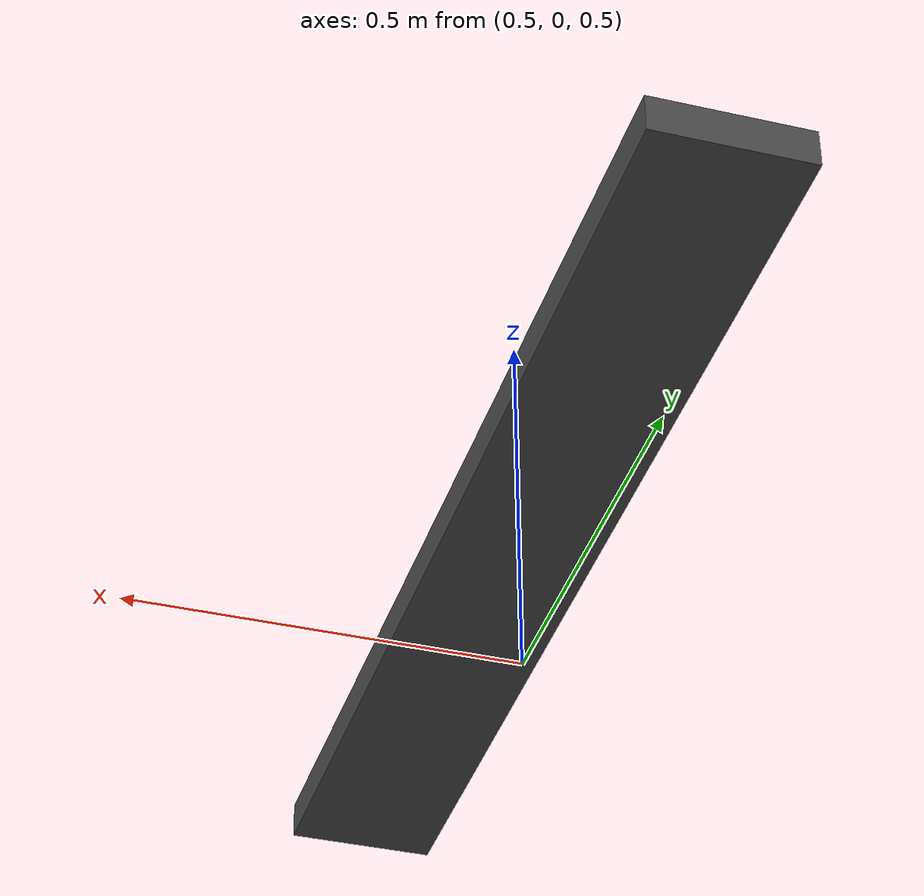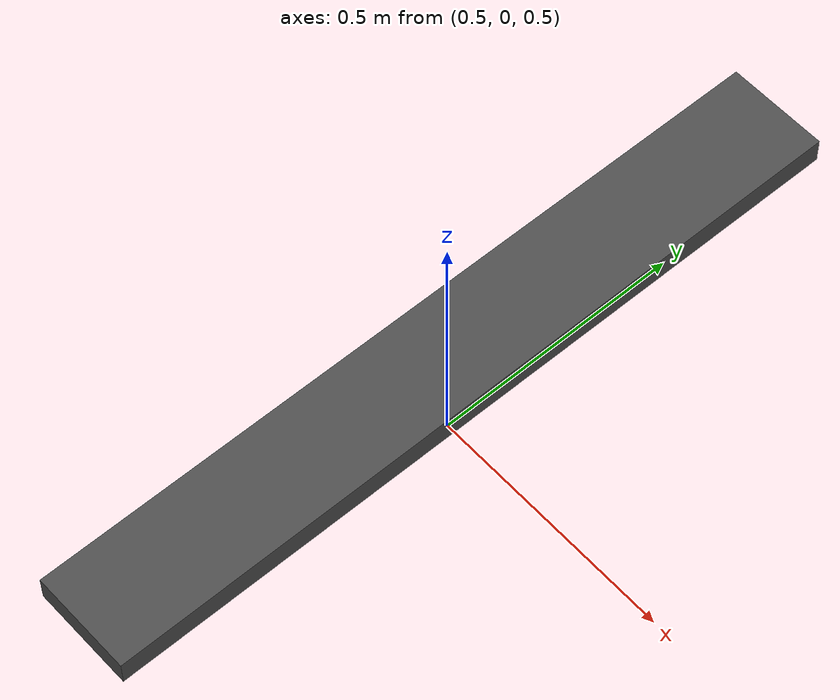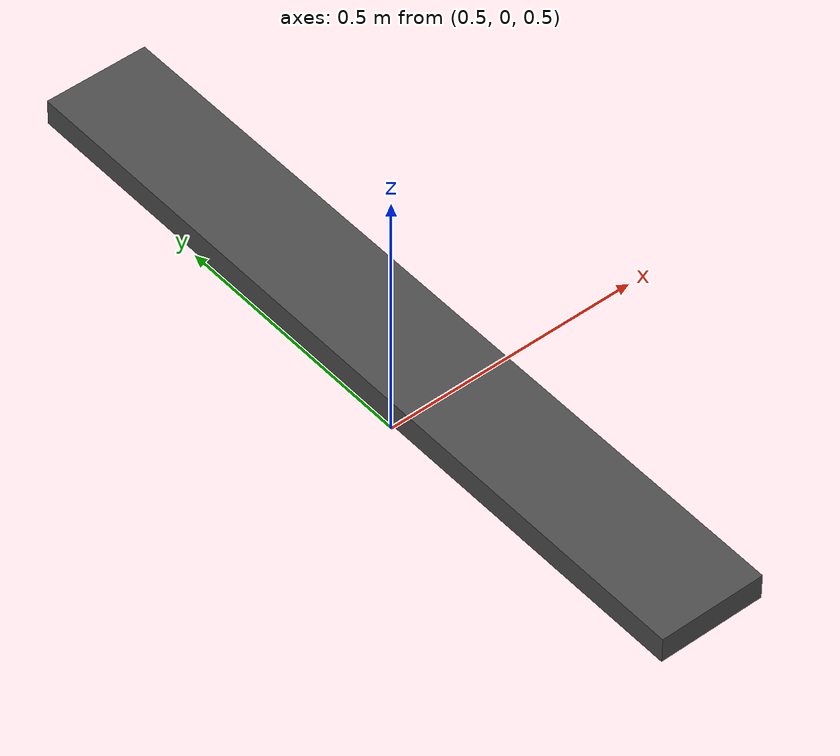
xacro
<?xml version="1.0" encoding="utf-8"?>
<robot name="conveyor_belt">
	<link name="world" />

	<joint name="fixed" type="fixed">
		<parent link="world"/>
		<child link="belt_visual"/>
		<origin xyz="0.5 0.0 0.7" rpy="0.0 0.0 0"/>
	</joint>

	<link name="belt_visual">
		<inertial>
			<origin xyz="0 0 0" rpy="0 0 0" />
			<mass value="1"/>
			<inertia
				ixx="0.07" ixy="0.0" ixz="0.0"
				iyy="0.40" iyz="0.0"
				izz="0.33"/>
   		</inertial>

		<visual>
			<origin xyz="0 0 0" rpy="0 0 0" />
			<geometry>
				<box size="0.2 1.5 0.05"/>
			</geometry>
		</visual>

		<collision>
			<origin xyz="0 0 0" rpy="0 0 0" />
			<geometry>
				<box size="0.2 1.5 0.05"/>
			</geometry>
		</collision>
	</link>

	<gazebo reference="belt_visual">
        <material>Gazebo/DarkGrey</material>
    </gazebo>

	<joint name="belt_joint" type="prismatic">
		<origin xyz="0.0 -0.3 0.025" rpy="0.0 0.0 0.0"/>
		<parent link="belt_visual"/>
		<child link="belt_moving"/>
		<axis xyz="0 1 0"/>
		<limit lower="0.0" upper="1" effort="1000" velocity="1000"/>
	</joint>

	<link name="belt_moving">
		<inertial>
			<origin xyz="0.0 0.0 0.0" rpy="0.0 0.0 0.0"/>
			<mass value="100"/>
			<inertia ixx="0.0" ixy="0.0" ixz="0.0" iyy="0.0" iyz="0.0" izz="0.0"/>
		</inertial>
		<collision>
			<origin xyz="0.0 0.0 0.0005" rpy="0.0 0.0 0.0"/>
			<geometry>
				<box size="0.2 1.8 0.001"/>
			</geometry>
		</collision>
	</link>

	<gazebo>
		<plugin name="conveyor_belt_plugin" filename="libROSConveyorBeltPlugin.so">
			<robot_namespace>/</robot_namespace>
			<link>belt_moving</link>
			<power>0</power>
			<max_velocity>1.0</max_velocity>
		</plugin>
	</gazebo>
</robot>
